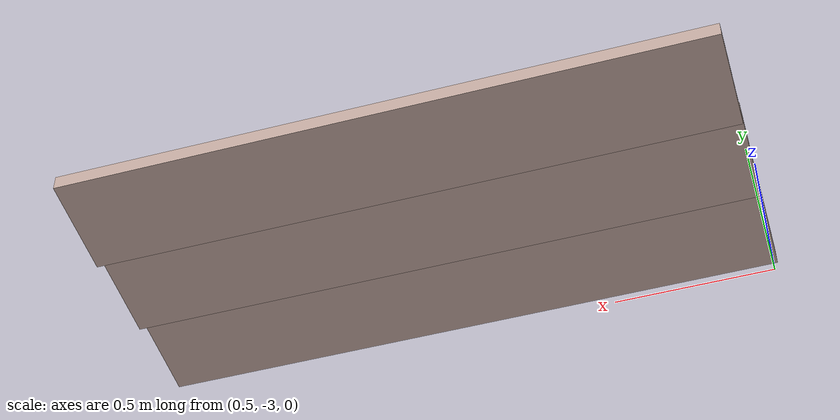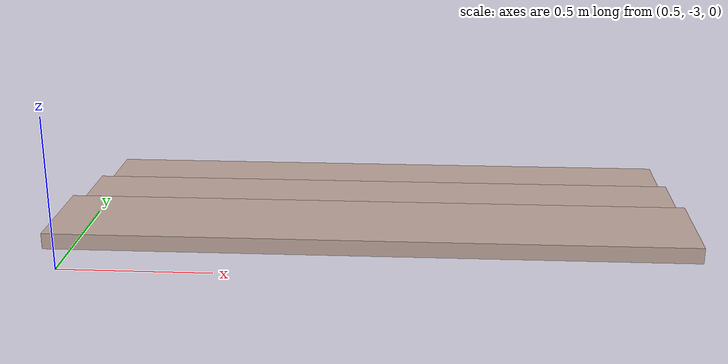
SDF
<?xml version='1.0'?>
<sdf version='1.6'>
  <model name='steps'>
    <pose frame=''>1.49 -2.57 0 0 -0 0</pose>
    <link name='Stairs_1'>
      <visual name='Stairs_1_Visual_0'>
        <pose frame=''>0 0.333333 0.025 0 -0 0</pose>
        <geometry>
          <box>
            <size>2 0.333333 0.05</size>
          </box>
        </geometry>
        <material>
          <script>
            <uri>file://media/materials/scripts/gazebo.material</uri>
            <name>Gazebo/Grey</name>
          </script>
          <ambient>0.760784 0.662745 0.627451 1</ambient>
        </material>
        <meta>
          <layer>0</layer>
        </meta>
      </visual>
      <collision name='Stairs_1_Collision_0'>
        <geometry>
          <box>
            <size>2 0.333333 0.05</size>
          </box>
        </geometry>
        <pose frame=''>0 0.333333 0.025 0 -0 0</pose>
      </collision>
      <visual name='Stairs_1_Visual_1'>
        <pose frame=''>0 0 0.075 0 -0 0</pose>
        <geometry>
          <box>
            <size>2 0.333333 0.05</size>
          </box>
        </geometry>
        <material>
          <script>
            <uri>file://media/materials/scripts/gazebo.material</uri>
            <name>Gazebo/Grey</name>
          </script>
          <ambient>0.760784 0.662745 0.627451 1</ambient>
        </material>
        <meta>
          <layer>0</layer>
        </meta>
      </visual>
      <collision name='Stairs_1_Collision_1'>
        <geometry>
          <box>
            <size>2 0.333333 0.05</size>
          </box>
        </geometry>
        <pose frame=''>0 0 0.075 0 -0 0</pose>
      </collision>
      <visual name='Stairs_1_Visual_2'>
        <pose frame=''>0 -0.333333 0.125 0 -0 0</pose>
        <geometry>
          <box>
            <size>2 0.333333 0.05</size>
          </box>
        </geometry>
        <material>
          <script>
            <uri>file://media/materials/scripts/gazebo.material</uri>
            <name>Gazebo/Grey</name>
          </script>
          <ambient>0.760784 0.662745 0.627451 1</ambient>
        </material>
        <meta>
          <layer>0</layer>
        </meta>
      </visual>
      <collision name='Stairs_1_Collision_2'>
        <geometry>
          <box>
            <size>2 0.333333 0.05</size>
          </box>
        </geometry>
        <pose frame=''>0 -0.333333 0.125 0 -0 0</pose>
      </collision>
    </link>
    <static>1</static>
  </model>
</sdf>
